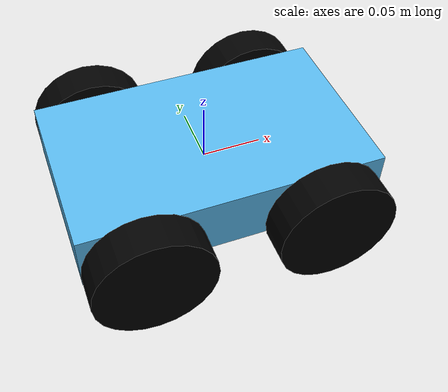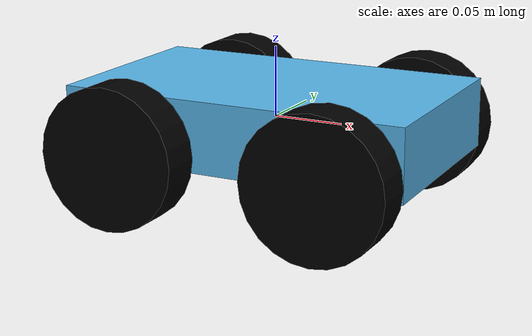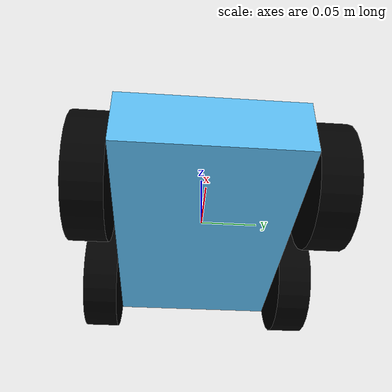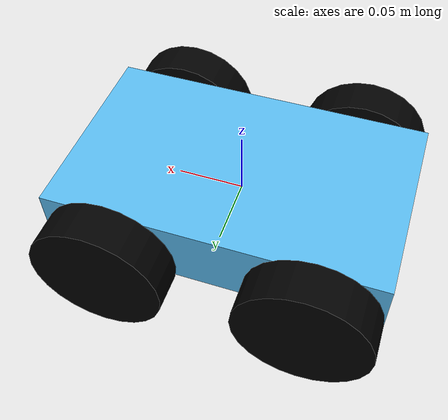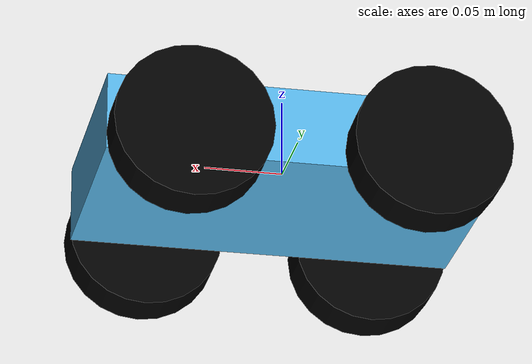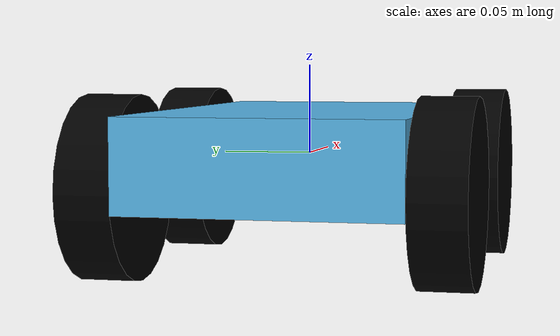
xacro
<?xml version="1.0"?>
<robot name="simple_robot"
       xmlns:xacro="http://www.ros.org/wiki/xacro">

  <xacro:property name="robot_color" value="0.0 0.0 0.0 1.0" />
  <xacro:property name="wheel_separation" value="0.070" />
  <xacro:property name="wheel_radius" value="0.05" />
  <xacro:property name="wheel_width" value="0.03" />
  <xacro:property name="body_height" value="0.05" />
  <xacro:property name="body_width" value="0.15" />
  <xacro:property name="body_length" value="0.25" />

  <material name="Red"><color rgba="1.0 0.0 0.0 1.0" /></material>
  <material name="Green"><color rgba="0.0 1.0 0.0 1.0" /></material>
  <material name="Blue"><color rgba="0.0 0.0 1.0 1.0" /></material>
  <material name="Yellow"><color rgba="1.0 1.0 0.0 1.0" /></material>
  <material name="Cyan"><color rgba="0.0 1.0 1.0 1.0" /></material>
  <material name="Magenta"><color rgba="1.0 0.0 1.0 1.0" /></material>
  <material name="White"><color rgba="1.0 1.0 1.0 1.0" /></material>
  <material name="Black"><color rgba="0.0 0.0 0.0 1.0" /></material>
  <material name="Gray"><color rgba="0.5 0.5 0.5 1.0" /></material>
  <material name="Orange"><color rgba="1.0 0.5 0.0 1.0" /></material>
  <material name="Purple"><color rgba="0.5 0.0 0.5 1.0" /></material>
  <material name="Brown"><color rgba="0.6 0.3 0.1 1.0" /></material>
  <material name="Pink"><color rgba="1.0 0.75 0.8 1.0" /></material>
  <material name="Turquoise"><color rgba="0.25 0.88 0.82 1.0" /></material>
  <material name="Gold"><color rgba="1.0 0.84 0.0 1.0" /></material>
  <material name="Silver"><color rgba="0.75 0.75 0.75 1.0" /></material>

  <!-- Base footprint -->
  <link name="base_footprint"/>

  <!-- Base link -->
  <link name="base_link">
    <visual>
      <geometry>
        <box size="${body_length} ${body_width} ${body_height}"/>
      </geometry>
      <material name="$(arg robot_color)" />
      <collision>
        <box size="${body_length} ${body_width} ${body_height}"/>
      </collision>
    </visual>
  </link>

  <!-- Wheel 1 -->
  <link name="wheel1">
    <visual>
      <geometry>
        <cylinder length="${wheel_width}" radius="${wheel_radius}"/>

      </geometry>
      <material name="Black" />
    </visual>
    <collision>
      <geometry>
        <cylinder length="${wheel_width}" radius="${wheel_radius}"/>

      </geometry>
    </collision>
    <inertial>
      <mass value="0.1"/>
      <origin xyz="0 0 0"/>
      <inertia ixx="0.0001" ixy="0.0" ixz="0.0" iyy="0.0001" iyz="0.0" izz="0.0001"/>
    </inertial>
  </link>

  <!-- Wheel 2 -->
  <link name="wheel2">
    <visual>
      <geometry>
        <cylinder length="${wheel_width}" radius="${wheel_radius}"/>

      </geometry>
      <material name="Black" />

    </visual>
    <collision>
      <geometry>
        <cylinder length="${wheel_width}" radius="${wheel_radius}"/>

      </geometry>
    </collision>
    <inertial>
      <mass value="0.1"/>
      <origin xyz="0 0 0"/>
      <inertia ixx="0.0001" ixy="0.0" ixz="0.0" iyy="0.0001" iyz="0.0" izz="0.0001"/>
    </inertial>
  </link>

  <!-- Wheel 3 -->
  <link name="wheel3">
    <visual>
      <geometry>
        <cylinder length="${wheel_width}" radius="${wheel_radius}"/>

      </geometry>
      <material name="Black" />
    </visual>
    <collision>
      <geometry>
        <cylinder length="${wheel_width}" radius="${wheel_radius}"/>

      </geometry>

    </collision>
    <inertial>
      <mass value="0.1"/>
      <origin xyz="0 0 0"/>
      <inertia ixx="0.0001" ixy="0.0" ixz="0.0" iyy="0.0001" iyz="0.0" izz="0.0001"/>
    </inertial>
  </link>

  <!-- Wheel 4 -->
  <link name="wheel4">
    <visual>
      <geometry>
        <cylinder length="${wheel_width}" radius="${wheel_radius}"/>

      </geometry>
      <material name="Black" />

    </visual>
    <collision>
      <geometry>
        <cylinder length="${wheel_width}" radius="${wheel_radius}"/>
      </geometry>
    </collision>
    <inertial>
      <mass value="0.1"/>
      <origin xyz="0 0 0"/>
      <inertia ixx="0.0001" ixy="0.0" ixz="0.0" iyy="0.0001" iyz="0.0" izz="0.0001"/>
    </inertial>
  </link>

  <!-- Joints -->
  <joint name="base_link_joint" type="fixed">
    <parent link="base_footprint"/>
    <child link="base_link"/>
    <origin xyz="0 0 0"/>
  </joint>

  <joint name="wheel1_joint" type="fixed">
    <parent link="base_link"/>
    <child link="wheel1"/>
    <origin xyz="${body_width/2} ${body_width/2 + wheel_width/2} -${body_height/2 - 0.01}" rpy="${pi/2} 0 0" />
    <axis xyz="0 0 1"/>
  </joint>

  <joint name="wheel2_joint" type="fixed">
    <parent link="base_link"/>
    <child link="wheel2"/>
    <origin xyz="-${body_width/2} ${body_width/2 + wheel_width/2} -${body_height/2 - 0.01}" rpy="${pi/2} 0 0" />

    <axis xyz="0 0 1"/>
  </joint>

  <joint name="wheel3_joint" type="fixed">
    <parent link="base_link"/>
    <child link="wheel3"/>
    <origin xyz="${body_width/2} -${body_width/2 + wheel_width/2} -${body_height/2 - 0.01}" rpy="${pi/2} 0 0" />
    <axis xyz="0 0 1"/>
  </joint>

  <joint name="wheel4_joint" type="fixed">
    <parent link="base_link"/>
    <child link="wheel4"/>
    <origin xyz="-${body_width/2} -${body_width/2 + wheel_width/2} -${body_height/2 - 0.01}" rpy="${pi/2} 0 0" />

    <axis xyz="0 0 1"/>
  </joint>

  <gazebo>
    <plugin name="nexus_ros_force_based_move" filename="libnexus_ros_force_based_move.so">
      <commandTopic>cmd_vel</commandTopic>
      <odometryTopic>odom</odometryTopic>
      <odometryFrame>odom</odometryFrame>
      <odometryRate>25.0</odometryRate>
      <robotBaseFrame>base_footprint</robotBaseFrame>
      <cmdVelTimeOut>0.25</cmdVelTimeOut>
      <publishOdometryTf>1</publishOdometryTf>
      <yaw_velocity_p_gain>1.0</yaw_velocity_p_gain>
      <x_velocity_p_gain>15.0</x_velocity_p_gain>
      <y_velocity_p_gain>15.0</y_velocity_p_gain>
      <max_x_velocity>0.6</max_x_velocity>
      <max_y_velocity>0.6</max_y_velocity>
      <max_yaw_velocity>0.5</max_yaw_velocity>
    </plugin>
  </gazebo>

<!-- All static links get collapsed down to base_link in Gazebo, so that's
       the one to apply the colour to (in Gazebo 5+). -->
  <gazebo reference="base_footprint">
    <material>Gazebo/$(arg robot_color)</material>
    <gravity>true</gravity>
  </gazebo>

  <gazebo reference="base_link">
    <material>Gazebo/$(arg robot_color)</material>
  </gazebo>

  <gazebo reference="upper_left_wheel_shaft">
    <material>Gazebo/Black</material>
  </gazebo>

  <gazebo reference="lower_left_wheel_shaft">
    <material>Gazebo/Black</material>
  </gazebo>

  <gazebo reference="upper_right_wheel_shaft">
    <material>Gazebo/Black</material>
  </gazebo>

  <gazebo reference="lower_right_wheel_shaft">
    <material>Gazebo/Black</material>
  </gazebo>

  <!-- Wheel friction to zero, as movement is handled by applying forces at the body level. -->
  <gazebo reference="wheel1">
    <material>Gazebo/Grey</material>
    <mu1>0.0</mu1>
    <mu2>0.0</mu2>
  </gazebo>

  <gazebo reference="wheel2">
    <material>Gazebo/Grey</material>
    <mu1>0.0</mu1>
    <mu2>0.0</mu2>
  </gazebo>

  <gazebo reference="wheel3">
    <material>Gazebo/Grey</material>
    <mu1>0.0</mu1>
    <mu2>0.0</mu2>
  </gazebo>

  <gazebo reference="wheel4">
    <material>Gazebo/Grey</material>
    <mu1>0.0</mu1>
    <mu2>0.0</mu2>
  </gazebo>

</robot>
